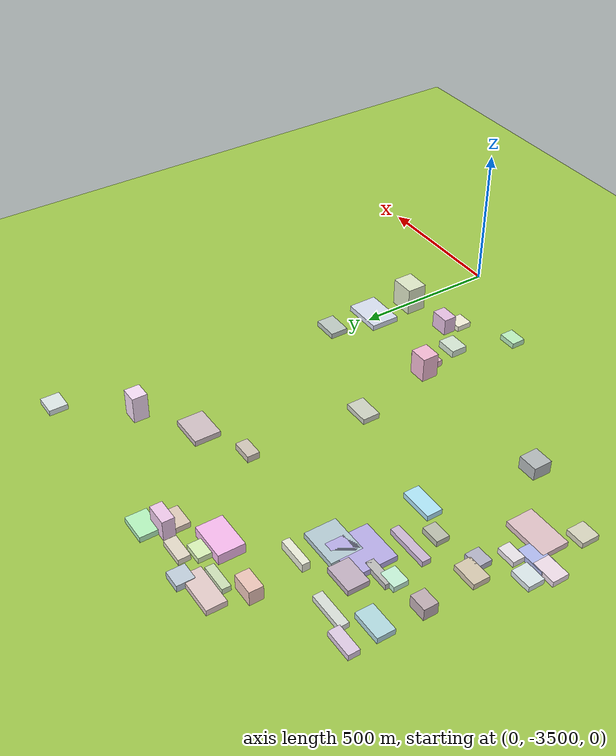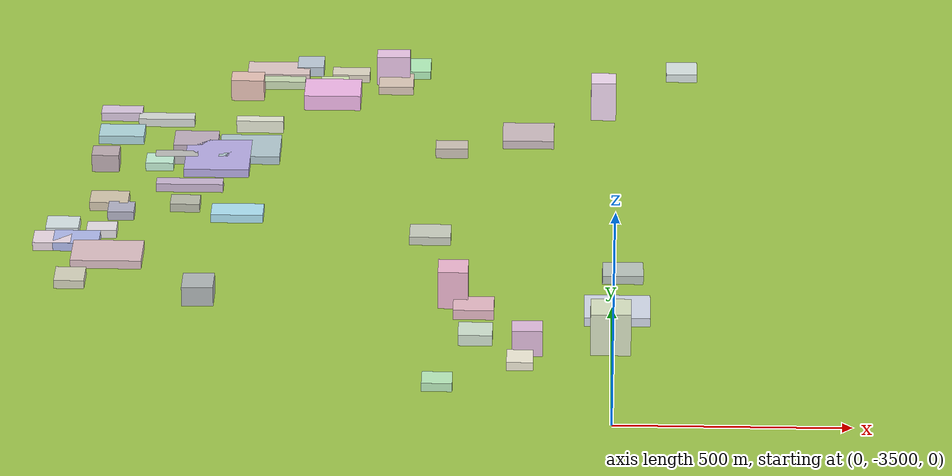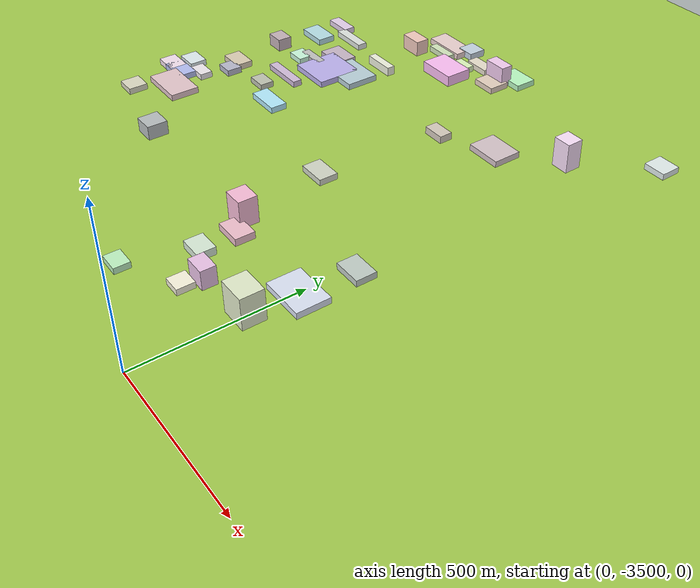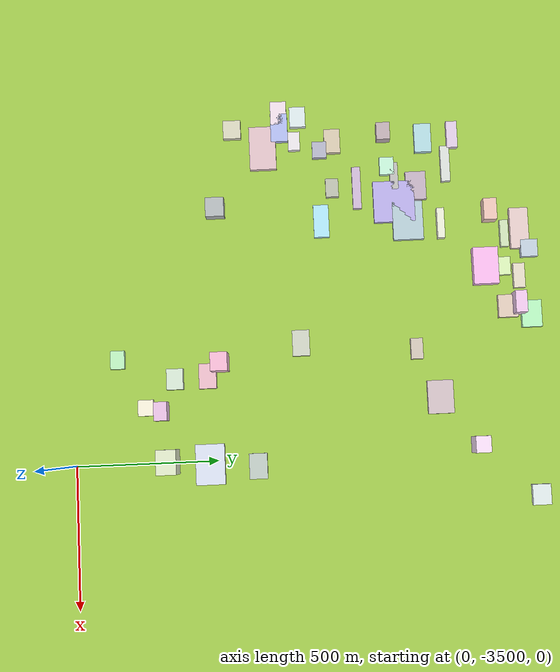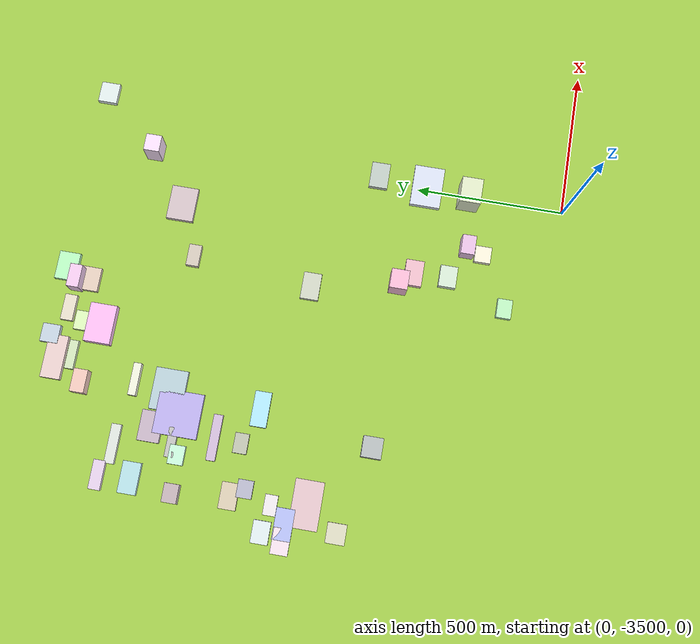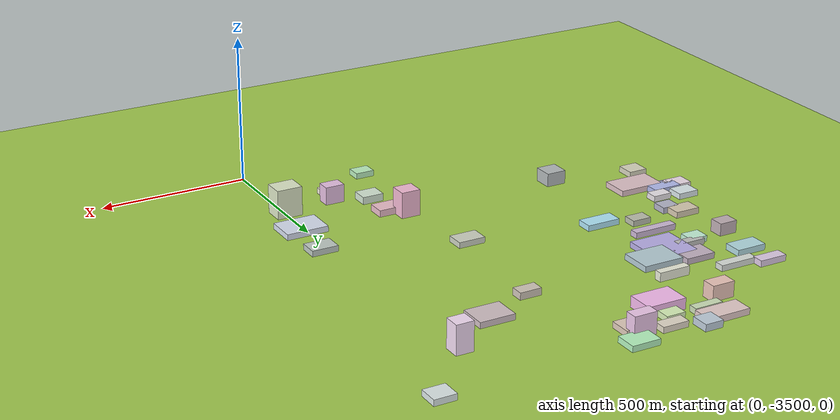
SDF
<sdf version="1.9">
 <world name="city_map">
  <model name="ground_plane">
   <static>1</static>
   <link name="link">
    <collision name="collision">
     <geometry><plane><normal>0 0 1</normal><size>11000 11000</size></plane></geometry>
    </collision>
    <visual name="visual">
     <geometry><plane><normal>0 0 1</normal><size>11000 11000</size></plane></geometry>
     <material>
      <ambient>0.551 0.712 0.210 1</ambient>
      <diffuse>0.651 0.812 0.310 1</diffuse>
      <specular>0.1 0.1 0.05 1</specular>
     </material>
    </visual>
   </link>
  </model>
  <model name="building_479139382">
   <static>1</static>
   <pose>-896.928513505181 -2339.3995182530753 10.0 0 0 0</pose>
   <link name="link">
    <collision name="collision">
     <geometry><box><size>147.8298000002951 146.91289525914297 20</size></box></geometry>
    </collision>
    <visual name="visual">
     <cast_shadows>false</cast_shadows>
     <geometry><box><size>147.8298000002951 146.91289525914297 20</size></box></geometry>
     <material>
      <ambient>0.648 0.606 0.838 1</ambient>
      <diffuse>0.748 0.706 0.938 1</diffuse>
      <specular>0.224 0.212 0.281 1</specular>
      <emissive>0.01 0.01 0.01 1</emissive>
     </material>
    </visual>
   </link>
  </model>
  <model name="building_648032">
   <static>1</static>
   <pose>-826.165752695264 -2292.9140597766213 10.0 0 0 0</pose>
   <link name="link">
    <collision name="collision">
     <geometry><box><size>138.69450000001393 108.04344567737381 20</size></box></geometry>
    </collision>
    <visual name="visual">
     <cast_shadows>false</cast_shadows>
     <geometry><box><size>138.69450000001393 108.04344567737381 20</size></box></geometry>
     <material>
      <ambient>0.635 0.727 0.757 1</ambient>
      <diffuse>0.735 0.827 0.857 1</diffuse>
      <specular>0.220 0.248 0.257 1</specular>
      <emissive>0.01 0.01 0.01 1</emissive>
     </material>
    </visual>
   </link>
  </model>
  <model name="building_833904663">
   <static>1</static>
   <pose>-1112.1310680014935 -2802.2900633250106 10.0 0 0 0</pose>
   <link name="link">
    <collision name="collision">
     <geometry><box><size>156.35459999975154 94.78847851034428 20</size></box></geometry>
    </collision>
    <visual name="visual">
     <cast_shadows>false</cast_shadows>
     <geometry><box><size>156.35459999975154 94.78847851034428 20</size></box></geometry>
     <material>
      <ambient>0.804 0.687 0.707 1</ambient>
      <diffuse>0.904 0.787 0.807 1</diffuse>
      <specular>0.271 0.236 0.242 1</specular>
      <emissive>0.01 0.01 0.01 1</emissive>
     </material>
    </visual>
   </link>
  </model>
  <model name="building_187743169">
   <static>1</static>
   <pose>11.684414297997584 -3029.0062771167763 10.0 0 0 0</pose>
   <link name="link">
    <collision name="collision">
     <geometry><box><size>142.61280000005883 102.90291312483265 20</size></box></geometry>
    </collision>
    <visual name="visual">
     <cast_shadows>false</cast_shadows>
     <geometry><box><size>142.61280000005883 102.90291312483265 20</size></box></geometry>
     <material>
      <ambient>0.771 0.800 0.867 1</ambient>
      <diffuse>0.871 0.900 0.967 1</diffuse>
      <specular>0.261 0.270 0.290 1</specular>
      <emissive>0.01 0.01 0.01 1</emissive>
     </material>
    </visual>
   </link>
  </model>
  <model name="building_450442414">
   <static>1</static>
   <pose>-648.49446618354 -2026.4324046599886 18.34847734455792 0 0 0</pose>
   <link name="link">
    <collision name="collision">
     <geometry><box><size>130.97750690866337 89.23290000011974 36.69695468911584</size></box></geometry>
    </collision>
    <visual name="visual">
     <cast_shadows>false</cast_shadows>
     <geometry><box><size>130.97750690866337 89.23290000011974 36.69695468911584</size></box></geometry>
     <material>
      <ambient>0.898 0.660 0.862 1</ambient>
      <diffuse>0.998 0.760 0.962 1</diffuse>
      <specular>0.299 0.228 0.289 1</specular>
      <emissive>0.01 0.01 0.01 1</emissive>
     </material>
    </visual>
   </link>
  </model>
  <model name="building_809021021">
   <static>1</static>
   <pose>-190.35745749815413 -2209.4731891970464 10.0 0 0 0</pose>
   <link name="link">
    <collision name="collision">
     <geometry><box><size>117.69329999987832 91.54009338916006 20</size></box></geometry>
    </collision>
    <visual name="visual">
     <cast_shadows>false</cast_shadows>
     <geometry><box><size>117.69329999987832 91.54009338916006 20</size></box></geometry>
     <material>
      <ambient>0.744 0.676 0.694 1</ambient>
      <diffuse>0.844 0.776 0.794 1</diffuse>
      <specular>0.253 0.233 0.238 1</specular>
      <emissive>0.01 0.01 0.01 1</emissive>
     </material>
    </visual>
   </link>
  </model>
  <model name="building_463855924">
   <static>1</static>
   <pose>-781.2852883891346 -1897.3464614187312 10.45830956044702 0 0 0</pose>
   <link name="link">
    <collision name="collision">
     <geometry><box><size>145.9064558140145 66.30029999949727 20.91661912089404</size></box></geometry>
    </collision>
    <visual name="visual">
     <cast_shadows>false</cast_shadows>
     <geometry><box><size>145.9064558140145 66.30029999949727 20.91661912089404</size></box></geometry>
     <material>
      <ambient>0.826 0.728 0.719 1</ambient>
      <diffuse>0.926 0.828 0.819 1</diffuse>
      <specular>0.278 0.248 0.246 1</specular>
      <emissive>0.01 0.01 0.01 1</emissive>
     </material>
    </visual>
   </link>
  </model>
  <model name="building_255054345">
   <static>1</static>
   <pose>-951.8599182451599 -2258.359693908932 10.0 0 0 0</pose>
   <link name="link">
    <collision name="collision">
     <geometry><box><size>101.29859999994295 72.58670675585688 20</size></box></geometry>
    </collision>
    <visual name="visual">
     <cast_shadows>false</cast_shadows>
     <geometry><box><size>101.29859999994295 72.58670675585688 20</size></box></geometry>
     <material>
      <ambient>0.690 0.622 0.685 1</ambient>
      <diffuse>0.790 0.722 0.785 1</diffuse>
      <specular>0.237 0.216 0.235 1</specular>
      <emissive>0.01 0.01 0.01 1</emissive>
     </material>
    </visual>
   </link>
  </model>
  <model name="building_340518383">
   <static>1</static>
   <pose>-471.9862144086905 -1870.777545645981 10.0 0 0 0</pose>
   <link name="link">
    <collision name="collision">
     <geometry><box><size>95.40450000046974 71.04075511195198 20</size></box></geometry>
    </collision>
    <visual name="visual">
     <cast_shadows>false</cast_shadows>
     <geometry><box><size>95.40450000046974 71.04075511195198 20</size></box></geometry>
     <material>
      <ambient>0.638 0.891 0.674 1</ambient>
      <diffuse>0.738 0.991 0.774 1</diffuse>
      <specular>0.221 0.297 0.232 1</specular>
      <emissive>0.01 0.01 0.01 1</emissive>
     </material>
    </visual>
   </link>
  </model>
  <model name="building_966641759">
   <static>1</static>
   <pose>-836.8249396386418 -2602.78797499358 10.0 0 0 0</pose>
   <link name="link">
    <collision name="collision">
     <geometry><box><size>116.51081000515762 54.63419999961161 20</size></box></geometry>
    </collision>
    <visual name="visual">
     <cast_shadows>false</cast_shadows>
     <geometry><box><size>116.51081000515762 54.63419999961161 20</size></box></geometry>
     <material>
      <ambient>0.609 0.827 0.899 1</ambient>
      <diffuse>0.709 0.927 0.999 1</diffuse>
      <specular>0.213 0.278 0.300 1</specular>
      <emissive>0.01 0.01 0.01 1</emissive>
     </material>
    </visual>
   </link>
  </model>
  <model name="building_890097952">
   <static>1</static>
   <pose>-1125.2456810552194 -2225.123795083237 10.5 0 0 0</pose>
   <link name="link">
    <collision name="collision">
     <geometry><box><size>103.65179999983809 60.639491176794536 21.0</size></box></geometry>
    </collision>
    <visual name="visual">
     <cast_shadows>false</cast_shadows>
     <geometry><box><size>103.65179999983809 60.639491176794536 21.0</size></box></geometry>
     <material>
      <ambient>0.623 0.784 0.812 1</ambient>
      <diffuse>0.723 0.884 0.912 1</diffuse>
      <specular>0.217 0.265 0.274 1</specular>
      <emissive>0.01 0.01 0.01 1</emissive>
     </material>
    </visual>
   </link>
  </model>
  <model name="building_634931872">
   <static>1</static>
   <pose>-1185.107927852636 -2740.2746310095517 10.0 0 0 0</pose>
   <link name="link">
    <collision name="collision">
     <geometry><box><size>101.88980824598345 60.35070000016418 20</size></box></geometry>
    </collision>
    <visual name="visual">
     <cast_shadows>false</cast_shadows>
     <geometry><box><size>101.88980824598345 60.35070000016418 20</size></box></geometry>
     <material>
      <ambient>0.621 0.660 0.866 1</ambient>
      <diffuse>0.721 0.760 0.966 1</diffuse>
      <specular>0.216 0.228 0.290 1</specular>
      <emissive>0.01 0.01 0.01 1</emissive>
     </material>
    </visual>
   </link>
  </model>
  <model name="building_772674894">
   <static>1</static>
   <pose>-3.0980254991853435 -3172.70967900553 49.62257833809802 0 0 0</pose>
   <link name="link">
    <collision name="collision">
     <geometry><box><size>86.70210000051526 70.5661826408897 99.24515667619605</size></box></geometry>
    </collision>
    <visual name="visual">
     <cast_shadows>false</cast_shadows>
     <geometry><box><size>86.70210000051526 70.5661826408897 99.24515667619605</size></box></geometry>
     <material>
      <ambient>0.797 0.835 0.706 1</ambient>
      <diffuse>0.897 0.935 0.806 1</diffuse>
      <specular>0.269 0.280 0.242 1</specular>
      <emissive>0.01 0.01 0.01 1</emissive>
     </material>
    </visual>
   </link>
  </model>
  <model name="building_532414327">
   <static>1</static>
   <pose>24.570643214224194 -2860.8195515395196 10.0 0 0 0</pose>
   <link name="link">
    <collision name="collision">
     <geometry><box><size>89.45051086903375 63.614100000442875 20</size></box></geometry>
    </collision>
    <visual name="visual">
     <cast_shadows>false</cast_shadows>
     <geometry><box><size>89.45051086903375 63.614100000442875 20</size></box></geometry>
     <material>
      <ambient>0.668 0.714 0.686 1</ambient>
      <diffuse>0.768 0.814 0.786 1</diffuse>
      <specular>0.230 0.244 0.236 1</specular>
      <emissive>0.01 0.01 0.01 1</emissive>
     </material>
    </visual>
   </link>
  </model>
  <model name="building_965468331">
   <static>1</static>
   <pose>-502.8450402615763 -1952.8871297938654 10.0 0 0 0</pose>
   <link name="link">
    <collision name="collision">
     <geometry><box><size>80.52855116207867 69.99660000010266 20</size></box></geometry>
    </collision>
    <visual name="visual">
     <cast_shadows>false</cast_shadows>
     <geometry><box><size>80.52855116207867 69.99660000010266 20</size></box></geometry>
     <material>
      <ambient>0.807 0.723 0.659 1</ambient>
      <diffuse>0.907 0.823 0.759 1</diffuse>
      <specular>0.272 0.247 0.228 1</specular>
      <emissive>0.01 0.01 0.01 1</emissive>
     </material>
    </visual>
   </link>
  </model>
  <model name="building_998069930">
   <static>1</static>
   <pose>-402.1712359576777 -2693.787469113986 10.0 0 0 0</pose>
   <link name="link">
    <collision name="collision">
     <geometry><box><size>91.68447613373186 61.0167000000601 20</size></box></geometry>
    </collision>
    <visual name="visual">
     <cast_shadows>false</cast_shadows>
     <geometry><box><size>91.68447613373186 61.0167000000601 20</size></box></geometry>
     <material>
      <ambient>0.731 0.750 0.688 1</ambient>
      <diffuse>0.831 0.850 0.788 1</diffuse>
      <specular>0.249 0.255 0.236 1</specular>
      <emissive>0.01 0.01 0.01 1</emissive>
     </material>
    </visual>
   </link>
  </model>
  <model name="building_309795752">
   <static>1</static>
   <pose>-299.1048235611412 -3027.914269472146 11.471331940449584 0 0 0</pose>
   <link name="link">
    <collision name="collision">
     <geometry><box><size>88.45348928031822 61.471799999857524 22.94266388089917</size></box></geometry>
    </collision>
    <visual name="visual">
     <cast_shadows>false</cast_shadows>
     <geometry><box><size>88.45348928031822 61.471799999857524 22.94266388089917</size></box></geometry>
     <material>
      <ambient>0.848 0.664 0.714 1</ambient>
      <diffuse>0.948 0.764 0.814 1</diffuse>
      <specular>0.284 0.229 0.244 1</specular>
      <emissive>0.01 0.01 0.01 1</emissive>
     </material>
    </visual>
   </link>
  </model>
  <model name="building_203760394">
   <static>1</static>
   <pose>-1127.3394810894647 -2551.8127549974656 10.5 0 0 0</pose>
   <link name="link">
    <collision name="collision">
     <geometry><box><size>86.39720055214786 57.10949999935622 21.0</size></box></geometry>
    </collision>
    <visual name="visual">
     <cast_shadows>false</cast_shadows>
     <geometry><box><size>86.39720055214786 57.10949999935622 21.0</size></box></geometry>
     <material>
      <ambient>0.768 0.715 0.616 1</ambient>
      <diffuse>0.868 0.815 0.716 1</diffuse>
      <specular>0.260 0.245 0.215 1</specular>
      <emissive>0.01 0.01 0.01 1</emissive>
     </material>
    </visual>
   </link>
  </model>
  <model name="building_441249978">
   <static>1</static>
   <pose>-1238.6826927526108 -2741.089142560148 10.0 0 0 0</pose>
   <link name="link">
    <collision name="collision">
     <geometry><box><size>83.96786106911934 57.17609999934581 20</size></box></geometry>
    </collision>
    <visual name="visual">
     <cast_shadows>false</cast_shadows>
     <geometry><box><size>83.96786106911934 57.17609999934581 20</size></box></geometry>
     <material>
      <ambient>0.865 0.794 0.842 1</ambient>
      <diffuse>0.965 0.894 0.942 1</diffuse>
      <specular>0.290 0.268 0.283 1</specular>
      <emissive>0.01 0.01 0.01 1</emissive>
     </material>
    </visual>
   </link>
  </model>
  <model name="building_143690767">
   <static>1</static>
   <pose>166.2770872060875 -1874.1636164856845 10.0 0 0 0</pose>
   <link name="link">
    <collision name="collision">
     <geometry><box><size>72.07445700705877 64.8684000001154 20</size></box></geometry>
    </collision>
    <visual name="visual">
     <cast_shadows>false</cast_shadows>
     <geometry><box><size>72.07445700705877 64.8684000001154 20</size></box></geometry>
     <material>
      <ambient>0.796 0.840 0.836 1</ambient>
      <diffuse>0.896 0.940 0.936 1</diffuse>
      <specular>0.269 0.282 0.281 1</specular>
      <emissive>0.01 0.01 0.01 1</emissive>
     </material>
    </visual>
   </link>
  </model>
  <model name="building_589793068">
   <static>1</static>
   <pose>-952.5902961926754 -2470.7705153195716 10.0 0 0 0</pose>
   <link name="link">
    <collision name="collision">
     <geometry><box><size>150.82937859788063 30.380700000115723 20</size></box></geometry>
    </collision>
    <visual name="visual">
     <cast_shadows>false</cast_shadows>
     <geometry><box><size>150.82937859788063 30.380700000115723 20</size></box></geometry>
     <material>
      <ambient>0.730 0.649 0.764 1</ambient>
      <diffuse>0.830 0.749 0.864 1</diffuse>
      <specular>0.249 0.225 0.259 1</specular>
      <emissive>0.01 0.01 0.01 1</emissive>
     </material>
    </visual>
   </link>
  </model>
  <model name="building_715711773">
   <static>1</static>
   <pose>-898.8639054550183 -2980.737703331674 22.991694788594618 0 0 0</pose>
   <link name="link">
    <collision name="collision">
     <geometry><box><size>68.69789999991127 65.9002263917514 45.983389577189236</size></box></geometry>
    </collision>
    <visual name="visual">
     <cast_shadows>false</cast_shadows>
     <geometry><box><size>68.69789999991127 65.9002263917514 45.983389577189236</size></box></geometry>
     <material>
      <ambient>0.626 0.648 0.655 1</ambient>
      <diffuse>0.726 0.748 0.755 1</diffuse>
      <specular>0.218 0.225 0.226 1</specular>
      <emissive>0.01 0.01 0.01 1</emissive>
     </material>
    </visual>
   </link>
  </model>
  <model name="building_498624884">
   <static>1</static>
   <pose>-292.7631020694357 -3143.6860451274565 12.712888281924744 0 0 0</pose>
   <link name="link">
    <collision name="collision">
     <geometry><box><size>73.67070000044862 58.35989839979 25.42577656384949</size></box></geometry>
    </collision>
    <visual name="visual">
     <cast_shadows>false</cast_shadows>
     <geometry><box><size>73.67070000044862 58.35989839979 25.42577656384949</size></box></geometry>
     <material>
      <ambient>0.757 0.829 0.755 1</ambient>
      <diffuse>0.857 0.929 0.855 1</diffuse>
      <specular>0.257 0.279 0.257 1</specular>
      <emissive>0.01 0.01 0.01 1</emissive>
     </material>
    </visual>
   </link>
  </model>
  <model name="building_637309548">
   <static>1</static>
   <pose>-1027.619495072408 -2148.9509284339706 10.0 0 0 0</pose>
   <link name="link">
    <collision name="collision">
     <geometry><box><size>128.87911767028356 32.50080000044164 20</size></box></geometry>
    </collision>
    <visual name="visual">
     <cast_shadows>false</cast_shadows>
     <geometry><box><size>128.87911767028356 32.50080000044164 20</size></box></geometry>
     <material>
      <ambient>0.782 0.803 0.782 1</ambient>
      <diffuse>0.882 0.903 0.882 1</diffuse>
      <specular>0.265 0.271 0.265 1</specular>
      <emissive>0.01 0.01 0.01 1</emissive>
     </material>
    </visual>
   </link>
  </model>
  <model name="building_270803608">
   <static>1</static>
   <pose>-1221.47415423039 -2672.866750185196 10.0 0 0 0</pose>
   <link name="link">
    <collision name="collision">
     <geometry><box><size>73.35989999997139 56.77294664446005 20</size></box></geometry>
    </collision>
    <visual name="visual">
     <cast_shadows>false</cast_shadows>
     <geometry><box><size>73.35989999997139 56.77294664446005 20</size></box></geometry>
     <material>
      <ambient>0.788 0.837 0.848 1</ambient>
      <diffuse>0.888 0.937 0.948 1</diffuse>
      <specular>0.267 0.281 0.284 1</specular>
      <emissive>0.01 0.01 0.01 1</emissive>
     </material>
    </visual>
   </link>
  </model>
  <model name="building_956623273">
   <static>1</static>
   <pose>-1185.0005938792224 -2910.632334670317 10.0 0 0 0</pose>
   <link name="link">
    <collision name="collision">
     <geometry><box><size>66.16957402930142 62.925899999498824 20</size></box></geometry>
    </collision>
    <visual name="visual">
     <cast_shadows>false</cast_shadows>
     <geometry><box><size>66.16957402930142 62.925899999498824 20</size></box></geometry>
     <material>
      <ambient>0.774 0.763 0.673 1</ambient>
      <diffuse>0.874 0.863 0.773 1</diffuse>
      <specular>0.262 0.259 0.232 1</specular>
      <emissive>0.01 0.01 0.01 1</emissive>
     </material>
    </visual>
   </link>
  </model>
  <model name="building_39826867">
   <static>1</static>
   <pose>-647.0306702605993 -1968.3822605872342 10.0 0 0 0</pose>
   <link name="link">
    <collision name="collision">
     <geometry><box><size>64.33559999940996 63.92028109408198 20</size></box></geometry>
    </collision>
    <visual name="visual">
     <cast_shadows>false</cast_shadows>
     <geometry><box><size>64.33559999940996 63.92028109408198 20</size></box></geometry>
     <material>
      <ambient>0.783 0.879 0.650 1</ambient>
      <diffuse>0.883 0.979 0.750 1</diffuse>
      <specular>0.265 0.294 0.225 1</specular>
      <emissive>0.01 0.01 0.01 1</emissive>
     </material>
    </visual>
   </link>
  </model>
  <model name="building_716675036">
   <static>1</static>
   <pose>-344.19533688128115 -2981.4053927634645 44.62846777045356 0 0 0</pose>
   <link name="link">
    <collision name="collision">
     <geometry><box><size>65.29188308012856 59.61810000027867 89.25693554090712</size></box></geometry>
    </collision>
    <visual name="visual">
     <cast_shadows>false</cast_shadows>
     <geometry><box><size>65.29188308012856 59.61810000027867 89.25693554090712</size></box></geometry>
     <material>
      <ambient>0.883 0.654 0.759 1</ambient>
      <diffuse>0.983 0.754 0.859 1</diffuse>
      <specular>0.295 0.226 0.258 1</specular>
      <emissive>0.01 0.01 0.01 1</emissive>
     </material>
    </visual>
   </link>
  </model>
  <model name="building_976641087">
   <static>1</static>
   <pose>-1133.3968242181952 -2119.545271232228 10.5 0 0 0</pose>
   <link name="link">
    <collision name="collision">
     <geometry><box><size>95.51550000018949 38.85339243253535 21.0</size></box></geometry>
    </collision>
    <visual name="visual">
     <cast_shadows>false</cast_shadows>
     <geometry><box><size>95.51550000018949 38.85339243253535 21.0</size></box></geometry>
     <material>
      <ambient>0.802 0.726 0.826 1</ambient>
      <diffuse>0.902 0.826 0.926 1</diffuse>
      <specular>0.271 0.248 0.278 1</specular>
      <emissive>0.01 0.01 0.01 1</emissive>
     </material>
    </visual>
   </link>
  </model>
  <model name="building_605824439">
   <static>1</static>
   <pose>-707.1752452576186 -1866.9383554786596 11.74961227871191 0 0 0</pose>
   <link name="link">
    <collision name="collision">
     <geometry><box><size>61.729807982070014 59.69580000039798 23.49922455742382</size></box></geometry>
    </collision>
    <visual name="visual">
     <cast_shadows>false</cast_shadows>
     <geometry><box><size>61.729807982070014 59.69580000039798 23.49922455742382</size></box></geometry>
     <material>
      <ambient>0.680 0.737 0.791 1</ambient>
      <diffuse>0.780 0.837 0.891 1</diffuse>
      <specular>0.234 0.251 0.267 1</specular>
      <emissive>0.01 0.01 0.01 1</emissive>
     </material>
    </visual>
   </link>
  </model>
  <model name="building_344931870">
   <static>1</static>
   <pose>-610.5134172563775 -1907.3219755649484 10.0 0 0 0</pose>
   <link name="link">
    <collision name="collision">
     <geometry><box><size>87.53451252663608 40.90350000004861 20</size></box></geometry>
    </collision>
    <visual name="visual">
     <cast_shadows>false</cast_shadows>
     <geometry><box><size>87.53451252663608 40.90350000004861 20</size></box></geometry>
     <material>
      <ambient>0.818 0.783 0.710 1</ambient>
      <diffuse>0.918 0.883 0.810 1</diffuse>
      <specular>0.276 0.265 0.243 1</specular>
      <emissive>0.01 0.01 0.01 1</emissive>
     </material>
    </visual>
   </link>
  </model>
  <model name="building_666575765">
   <static>1</static>
   <pose>-848.1682949590272 -2002.822087911554 25.89739795377389 0 0 0</pose>
   <link name="link">
    <collision name="collision">
     <geometry><box><size>76.3872574988233 46.66439999954264 51.79479590754778</size></box></geometry>
    </collision>
    <visual name="visual">
     <cast_shadows>false</cast_shadows>
     <geometry><box><size>76.3872574988233 46.66439999954264 51.79479590754778</size></box></geometry>
     <material>
      <ambient>0.857 0.701 0.653 1</ambient>
      <diffuse>0.957 0.801 0.753 1</diffuse>
      <specular>0.287 0.240 0.226 1</specular>
      <emissive>0.01 0.01 0.01 1</emissive>
     </material>
    </visual>
   </link>
  </model>
  <model name="building_476166728">
   <static>1</static>
   <pose>-369.57201663197407 -3344.8337393457873 10.0 0 0 0</pose>
   <link name="link">
    <collision name="collision">
     <geometry><box><size>65.07929999942519 49.825842836325215 20</size></box></geometry>
    </collision>
    <visual name="visual">
     <cast_shadows>false</cast_shadows>
     <geometry><box><size>65.07929999942519 49.825842836325215 20</size></box></geometry>
     <material>
      <ambient>0.659 0.866 0.673 1</ambient>
      <diffuse>0.759 0.966 0.773 1</diffuse>
      <specular>0.228 0.290 0.232 1</specular>
      <emissive>0.01 0.01 0.01 1</emissive>
     </material>
    </visual>
   </link>
  </model>
  <model name="building_665537599">
   <static>1</static>
   <pose>-1028.0515066270457 -2359.5685748404317 10.0 0 0 0</pose>
   <link name="link">
    <collision name="collision">
     <geometry><box><size>62.99250000027712 50.82941126358324 20</size></box></geometry>
    </collision>
    <visual name="visual">
     <cast_shadows>false</cast_shadows>
     <geometry><box><size>62.99250000027712 50.82941126358324 20</size></box></geometry>
     <material>
      <ambient>0.699 0.882 0.773 1</ambient>
      <diffuse>0.799 0.982 0.873 1</diffuse>
      <specular>0.240 0.295 0.262 1</specular>
      <emissive>0.01 0.01 0.01 1</emissive>
     </material>
    </visual>
   </link>
  </model>
  <model name="building_824369345">
   <static>1</static>
   <pose>-364.39012817085506 -2284.80370071086 12.0 0 0 0</pose>
   <link name="link">
    <collision name="collision">
     <geometry><box><size>73.41843446939787 42.76830000054588 24.0</size></box></geometry>
    </collision>
    <visual name="visual">
     <cast_shadows>false</cast_shadows>
     <geometry><box><size>73.41843446939787 42.76830000054588 24.0</size></box></geometry>
     <material>
      <ambient>0.744 0.701 0.650 1</ambient>
      <diffuse>0.844 0.801 0.750 1</diffuse>
      <specular>0.253 0.240 0.225 1</specular>
      <emissive>0.01 0.01 0.01 1</emissive>
     </material>
    </visual>
   </link>
  </model>
  <model name="building_460368683">
   <static>1</static>
   <pose>-510.32142603067064 -1915.9112527446573 36.02699008023676 0 0 0</pose>
   <link name="link">
    <collision name="collision">
     <geometry><box><size>76.83188614653264 40.84800000018873 72.05398016047351</size></box></geometry>
    </collision>
    <visual name="visual">
     <cast_shadows>false</cast_shadows>
     <geometry><box><size>76.83188614653264 40.84800000018873 72.05398016047351</size></box></geometry>
     <material>
      <ambient>0.865 0.714 0.850 1</ambient>
      <diffuse>0.965 0.814 0.950 1</diffuse>
      <specular>0.290 0.244 0.285 1</specular>
      <emissive>0.01 0.01 0.01 1</emissive>
     </material>
    </visual>
   </link>
  </model>
  <model name="building_626668650">
   <static>1</static>
   <pose>-195.8594760782407 -3249.5688758802944 10.0 0 0 0</pose>
   <link name="link">
    <collision name="collision">
     <geometry><box><size>56.621099999958346 54.93447422128331 20</size></box></geometry>
    </collision>
    <visual name="visual">
     <cast_shadows>false</cast_shadows>
     <geometry><box><size>56.621099999958346 54.93447422128331 20</size></box></geometry>
     <material>
      <ambient>0.888 0.867 0.783 1</ambient>
      <diffuse>0.988 0.967 0.883 1</diffuse>
      <specular>0.296 0.290 0.265 1</specular>
      <emissive>0.01 0.01 0.01 1</emissive>
     </material>
    </visual>
   </link>
  </model>
  <model name="building_994554121">
   <static>1</static>
   <pose>-17.853545743409125 -2081.506757627802 47.84883438211972 0 0 0</pose>
   <link name="link">
    <collision name="collision">
     <geometry><box><size>57.77958549179842 53.30219999981978 95.69766876423944</size></box></geometry>
    </collision>
    <visual name="visual">
     <cast_shadows>false</cast_shadows>
     <geometry><box><size>57.77958549179842 53.30219999981978 95.69766876423944</size></box></geometry>
     <material>
      <ambient>0.892 0.795 0.893 1</ambient>
      <diffuse>0.992 0.895 0.993 1</diffuse>
      <specular>0.298 0.268 0.298 1</specular>
      <emissive>0.01 0.01 0.01 1</emissive>
     </material>
    </visual>
   </link>
  </model>
  <model name="building_475143784">
   <static>1</static>
   <pose>-180.86823713664575 -3192.910427632992 30.699160752213043 0 0 0</pose>
   <link name="link">
    <collision name="collision">
     <geometry><box><size>65.85629999982956 46.573464803247376 61.398321504426086</size></box></geometry>
    </collision>
    <visual name="visual">
     <cast_shadows>false</cast_shadows>
     <geometry><box><size>65.85629999982956 46.573464803247376 61.398321504426086</size></box></geometry>
     <material>
      <ambient>0.828 0.676 0.814 1</ambient>
      <diffuse>0.928 0.776 0.914 1</diffuse>
      <specular>0.278 0.233 0.274 1</specular>
      <emissive>0.01 0.01 0.01 1</emissive>
     </material>
    </visual>
   </link>
  </model>
  <model name="building_831581301">
   <static>1</static>
   <pose>-956.3463228589058 -2559.1097913430317 10.0 0 0 0</pose>
   <link name="link">
    <collision name="collision">
     <geometry><box><size>66.15600000017707 45.85785736078097 20</size></box></geometry>
    </collision>
    <visual name="visual">
     <cast_shadows>false</cast_shadows>
     <geometry><box><size>66.15600000017707 45.85785736078097 20</size></box></geometry>
     <material>
      <ambient>0.659 0.672 0.604 1</ambient>
      <diffuse>0.759 0.772 0.704 1</diffuse>
      <specular>0.228 0.232 0.211 1</specular>
      <emissive>0.01 0.01 0.01 1</emissive>
     </material>
    </visual>
   </link>
  </model>
  <model name="building_557590979">
   <static>1</static>
   <pose>-1150.4376864088817 -2368.033997980435 21.0 0 0 0</pose>
   <link name="link">
    <collision name="collision">
     <geometry><box><size>61.83810000019463 48.51842445355594 42.0</size></box></geometry>
    </collision>
    <visual name="visual">
     <cast_shadows>false</cast_shadows>
     <geometry><box><size>61.83810000019463 48.51842445355594 42.0</size></box></geometry>
     <material>
      <ambient>0.676 0.607 0.631 1</ambient>
      <diffuse>0.776 0.707 0.731 1</diffuse>
      <specular>0.233 0.212 0.219 1</specular>
      <emissive>0.01 0.01 0.01 1</emissive>
     </material>
    </visual>
   </link>
  </model>
  <model name="building_542370913">
   <static>1</static>
   <pose>-1097.1592111119494 -2598.9479009727825 10.5 0 0 0</pose>
   <link name="link">
    <collision name="collision">
     <geometry><box><size>58.69126858455875 50.57159999945782 21.0</size></box></geometry>
    </collision>
    <visual name="visual">
     <cast_shadows>false</cast_shadows>
     <geometry><box><size>58.69126858455875 50.57159999945782 21.0</size></box></geometry>
     <material>
      <ambient>0.630 0.632 0.708 1</ambient>
      <diffuse>0.730 0.732 0.808 1</diffuse>
      <specular>0.219 0.220 0.242 1</specular>
      <emissive>0.01 0.01 0.01 1</emissive>
     </material>
    </visual>
   </link>
  </model>
  <model name="building_886347969">
   <static>1</static>
   <pose>-991.2412908318877 -2335.1807047863094 10.0 0 0 0</pose>
   <link name="link">
    <collision name="collision">
     <geometry><box><size>97.24709999991887 29.29336772086874 20</size></box></geometry>
    </collision>
    <visual name="visual">
     <cast_shadows>false</cast_shadows>
     <geometry><box><size>97.24709999991887 29.29336772086874 20</size></box></geometry>
     <material>
      <ambient>0.669 0.668 0.659 1</ambient>
      <diffuse>0.769 0.768 0.759 1</diffuse>
      <specular>0.231 0.230 0.228 1</specular>
      <emissive>0.01 0.01 0.01 1</emissive>
     </material>
    </visual>
   </link>
  </model>
  <model name="building_877968512">
   <static>1</static>
   <pose>-764.7443541629063 -1951.7311587413353 10.0 0 0 0</pose>
   <link name="link">
    <collision name="collision">
     <geometry><box><size>96.02193201683653 29.40390000053128 20</size></box></geometry>
    </collision>
    <visual name="visual">
     <cast_shadows>false</cast_shadows>
     <geometry><box><size>96.02193201683653 29.40390000053128 20</size></box></geometry>
     <material>
      <ambient>0.734 0.810 0.649 1</ambient>
      <diffuse>0.834 0.910 0.749 1</diffuse>
      <specular>0.250 0.273 0.225 1</specular>
      <emissive>0.01 0.01 0.01 1</emissive>
     </material>
    </visual>
   </link>
  </model>
  <model name="building_634774400">
   <static>1</static>
   <pose>-810.2998655822701 -2177.009114922635 15.0 0 0 0</pose>
   <link name="link">
    <collision name="collision">
     <geometry><box><size>107.66910731537675 26.12940000012287 30.0</size></box></geometry>
    </collision>
    <visual name="visual">
     <cast_shadows>false</cast_shadows>
     <geometry><box><size>107.66910731537675 26.12940000012287 30.0</size></box></geometry>
     <material>
      <ambient>0.847 0.856 0.780 1</ambient>
      <diffuse>0.947 0.956 0.880 1</diffuse>
      <specular>0.284 0.287 0.264 1</specular>
      <emissive>0.01 0.01 0.01 1</emissive>
     </material>
    </visual>
   </link>
  </model>
  <model name="building_725178159">
   <static>1</static>
   <pose>-1133.1684338079963 -2688.590218241614 10.0 0 0 0</pose>
   <link name="link">
    <collision name="collision">
     <geometry><box><size>66.7139570312962 41.99130000014151 20</size></box></geometry>
    </collision>
    <visual name="visual">
     <cast_shadows>false</cast_shadows>
     <geometry><box><size>66.7139570312962 41.99130000014151 20</size></box></geometry>
     <material>
      <ambient>0.844 0.822 0.841 1</ambient>
      <diffuse>0.944 0.922 0.941 1</diffuse>
      <specular>0.283 0.277 0.282 1</specular>
      <emissive>0.01 0.01 0.01 1</emissive>
     </material>
    </visual>
   </link>
  </model>
 </world>
</sdf>
